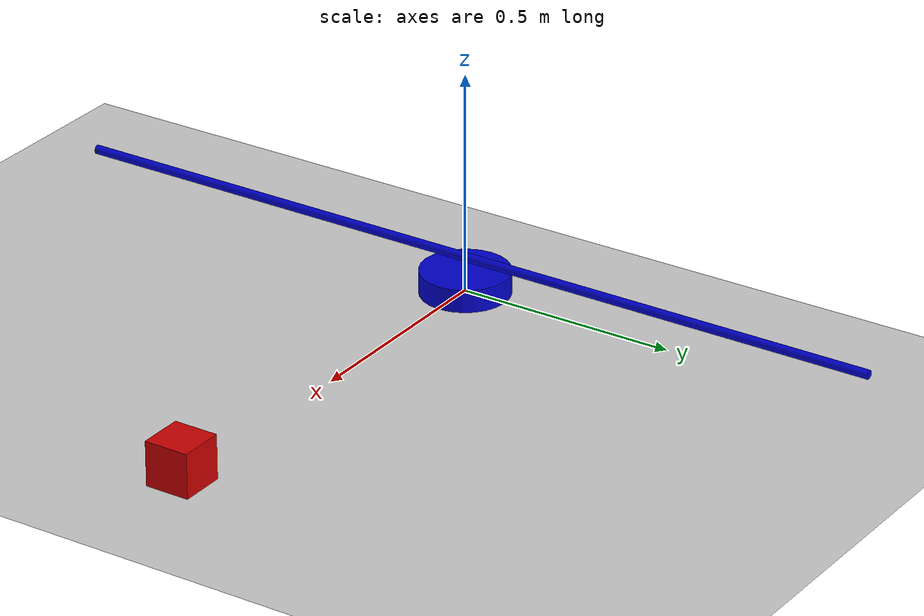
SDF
<?xml version="1.0" ?>

<sdf version="1.8">
  <world name="suction_gripper">

    <physics name="4ms" type="dart">
      <max_step_size>0.004</max_step_size>
      <real_time_factor>0</real_time_factor>
    </physics>

    <plugin
      filename="ignition-gazebo-physics-system"
      name="ignition::gazebo::systems::Physics">
    </plugin>
    <plugin
      filename="ignition-gazebo-user-commands-system"
      name="ignition::gazebo::systems::UserCommands">
    </plugin>
    <plugin
      filename="ignition-gazebo-scene-broadcaster-system"
      name="ignition::gazebo::systems::SceneBroadcaster">
    </plugin>
    <plugin
      filename="ignition-gazebo-contact-system"
      name="ignition::gazebo::systems::Contact">
    </plugin>

    <model name="ground_plane">
      <static>true</static>
      <link name="link">
        <collision name="collision">
          <geometry>
            <plane>
              <normal>0 0 1</normal>
              <size>100 100</size>
            </plane>
          </geometry>
        </collision>
        <visual name="visual">
          <geometry>
            <plane>
              <normal>0 0 1</normal>
              <size>100 100</size>
            </plane>
          </geometry>
          <material>
            <ambient>0.8 0.8 0.8 1</ambient>
            <diffuse>0.8 0.8 0.8 1</diffuse>
            <specular>0.8 0.8 0.8 1</specular>
          </material>
        </visual>
      </link>
    </model>

    <model name="suction_gripper">
      <pose>0 0 0 0 0 0</pose>
      <link name="base_link">
        <static>true</static>
        <collision name="base_collision">
          <geometry>
            <cylinder>
              <radius>0.1</radius>
              <length>0.1</length>
            </cylinder>
          </geometry>
        </collision>
        <visual name="base_visual">
          <geometry>
            <cylinder>
              <radius>0.1</radius>
              <length>0.1</length>
            </cylinder>
          </geometry>
          <material>
            <ambient>0 0 0.8 1</ambient>
            <diffuse>0 0 0.8 1</diffuse>
            <specular>0 0 0.8 1</specular>
          </material>
        </visual>
      </link>
      <link name="arm_link">
        <pose>0 0 0.08 1.57 0 0</pose>
        <collision name="arm_collision">
          <geometry>
            <cylinder>
              <radius>0.01</radius>
              <length>1.95</length>
            </cylinder>
          </geometry>
        </collision>
        <visual name="arm_visual">
          <geometry>
            <cylinder>
              <radius>0.01</radius>
              <length>1.95</length>
            </cylinder>
          </geometry>
          <material>
            <ambient>0 0 0.8 1</ambient>
            <diffuse>0 0 0.8 1</diffuse>
            <specular>0 0 0.8 1</specular>
          </material>
        </visual>

        <visual name="arm_contact_visual_11">
          <pose>0.01 0 0.97 0 1.57 0</pose>
          <geometry>
            <cylinder>
              <radius>0.001</radius>
              <length>0.001</length>
            </cylinder>
          </geometry>
          <material>
            <ambient>0 0.8 0 1</ambient>
            <diffuse>0 0.8 0 1</diffuse>
            <specular>0 0.8 0 1</specular>
          </material>
        </visual>

        <collision name="arm_contact_collision_11">
          <pose>0.01 0 0.97 0 1.57 0</pose>
          <geometry>
            <cylinder>
              <radius>0.001</radius>
              <length>0.001</length>
            </cylinder>
          </geometry>
        </collision>

        <sensor name='sensor_contact_11' type='contact'>
          <contact>
            <collision>arm_contact_collision_11</collision>
            <topic>/arm/contact_sensor_11</topic>
          </contact>
          <always_on>1</always_on>
          <update_rate>100</update_rate>
        </sensor>

        <visual name="arm_contact_visual_01">
          <pose>0.01 0.003 0.97 0 1.57 0</pose>
          <geometry>
            <cylinder>
              <radius>0.001</radius>
              <length>0.001</length>
            </cylinder>
          </geometry>
          <material>
            <ambient>0 0.8 0 1</ambient>
            <diffuse>0 0.8 0 1</diffuse>
            <specular>0 0.8 0 1</specular>
          </material>
        </visual>

        <collision name="arm_contact_collision_01">
          <pose>0.01 0.003 0.97 0 1.57 0</pose>
          <geometry>
            <cylinder>
              <radius>0.001</radius>
              <length>0.001</length>
            </cylinder>
          </geometry>
        </collision>

        <sensor name='sensor_contact_01' type='contact'>
          <contact>
            <collision>arm_contact_collision_01</collision>
            <topic>/arm/contact_sensor_01</topic>
          </contact>
          <always_on>1</always_on>
          <update_rate>100</update_rate>
        </sensor>

        <visual name="arm_contact_visual_21">
          <pose>0.01 -0.003 0.97 0 1.57 0</pose>
          <geometry>
            <cylinder>
              <radius>0.001</radius>
              <length>0.001</length>
            </cylinder>
          </geometry>
          <material>
            <ambient>0 0.8 0 1</ambient>
            <diffuse>0 0.8 0 1</diffuse>
            <specular>0 0.8 0 1</specular>
          </material>
        </visual>

        <collision name="arm_contact_collision_21">
          <pose>0.01 -0.003 0.97 0 1.57 0</pose>
          <geometry>
            <cylinder>
              <radius>0.001</radius>
              <length>0.001</length>
            </cylinder>
          </geometry>
        </collision>

        <sensor name='sensor_contact_21' type='contact'>
          <contact>
            <collision>arm_contact_collision_21</collision>
            <topic>/arm/contact_sensor_21</topic>
          </contact>
          <always_on>1</always_on>
          <update_rate>100</update_rate>
        </sensor>

        <visual name="arm_contact_visual_10">
          <pose>0.01 0.0 0.967 0 1.57 0</pose>
          <geometry>
            <cylinder>
              <radius>0.001</radius>
              <length>0.001</length>
            </cylinder>
          </geometry>
          <material>
            <ambient>0 0.8 0 1</ambient>
            <diffuse>0 0.8 0 1</diffuse>
            <specular>0 0.8 0 1</specular>
          </material>
        </visual>

        <collision name="arm_contact_collision_10">
          <pose>0.01 0.0 0.967 0 1.57 0</pose>
          <geometry>
            <cylinder>
              <radius>0.001</radius>
              <length>0.001</length>
            </cylinder>
          </geometry>
        </collision>

        <sensor name='sensor_contact_10' type='contact'>
          <contact>
            <collision>arm_contact_collision_10</collision>
            <topic>/arm/contact_sensor_10</topic>
          </contact>
          <always_on>1</always_on>
          <update_rate>100</update_rate>
        </sensor>

        <visual name="arm_contact_visual_12">
          <pose>0.01 0.0 0.973 0 1.57 0</pose>
          <geometry>
            <cylinder>
              <radius>0.001</radius>
              <length>0.001</length>
            </cylinder>
          </geometry>
          <material>
            <ambient>0 0.8 0 1</ambient>
            <diffuse>0 0.8 0 1</diffuse>
            <specular>0 0.8 0 1</specular>
          </material>
        </visual>

        <collision name="arm_contact_collision_12">
          <pose>0.01 0.0 0.973 0 1.57 0</pose>
          <geometry>
            <cylinder>
              <radius>0.001</radius>
              <length>0.001</length>
            </cylinder>
          </geometry>
        </collision>

        <sensor name='sensor_contact_12' type='contact'>
          <contact>
            <collision>arm_contact_collision_12</collision>
            <topic>/arm/contact_sensor_12</topic>
          </contact>
          <always_on>1</always_on>
          <update_rate>100</update_rate>
        </sensor>

     </link>
      <joint name="panda_joint_world" type="fixed">
        <parent>world</parent>
        <child>base_link</child>
      </joint>
      <joint name="suction_gripper_joint" type="revolute">
        <parent>base_link</parent>
        <child>arm_link</child>
        <axis>
          <xyz>0 1 0</xyz>
          <limit>
            <lower>-1.57</lower>
            <upper>1.57</upper>
            <velocity>0.1</velocity>
          </limit>
        </axis>
      </joint>
      <plugin
        filename="ignition-gazebo-joint-position-controller-system"
        name="ignition::gazebo::systems::JointPositionController">
        <joint_name>suction_gripper_joint</joint_name>
        <use_velocity_commands>true</use_velocity_commands>
      </plugin>
      <plugin
        filename="libSuctionGripper.so"
        name="mbzirc::SuctionGripperPlugin">
        <parent_link>arm_link</parent_link>
        <contact_sensor_topic_prefix>/arm</contact_sensor_topic_prefix>
        <command_topic>gripper/suction_on</command_topic>
      </plugin>
    </model>

    <model name="object">
      <pose>1.01 0 0.05 0 0 0</pose>
      <link name="object_1">
        <inertial>
          <mass>100</mass>
          <inertia>
            <ixx>0.167</ixx>
            <ixy>0</ixy>
            <ixz>0</ixz>
            <iyy>0.167</iyy>
            <iyz>0</iyz>
            <izz>0.167</izz>
          </inertia>
        </inertial>
        <collision name="object_1_col">
          <geometry>
            <box>
              <size>0.1 0.1 0.1</size>
            </box>
          </geometry>
        </collision>
        <visual name="object_1_vis">
          <geometry>
            <box>
              <size>0.1 0.1 0.1</size>
            </box>
          </geometry>
          <material>
            <ambient>0.5 0.0 0.0 1</ambient>
            <diffuse>0.8 0.0 0.0 1</diffuse>
            <specular>0.8 0.0 0.0 1</specular>
          </material>
        </visual>
      </link>
    </model>

  </world>
</sdf>
